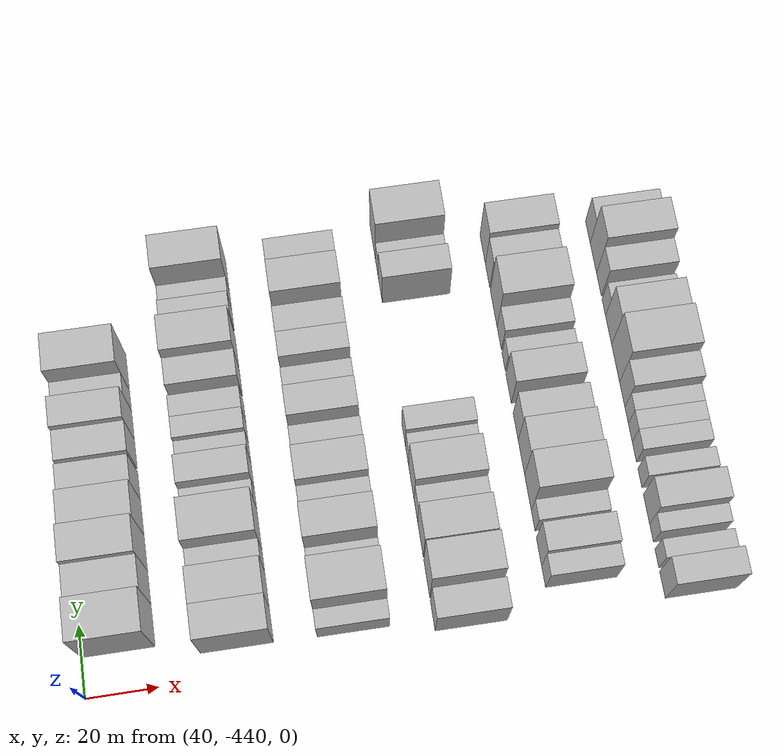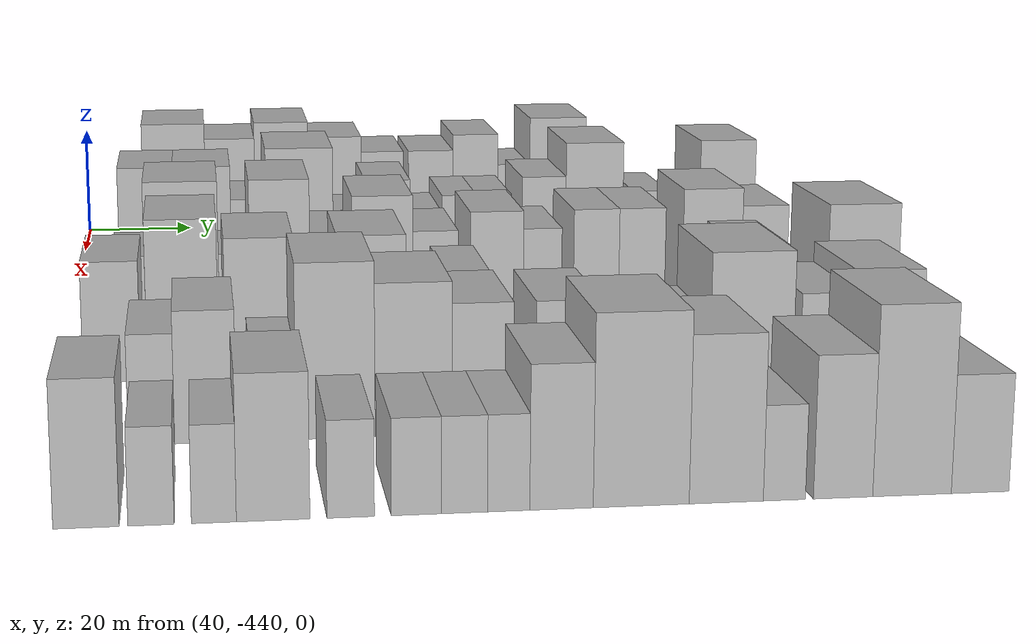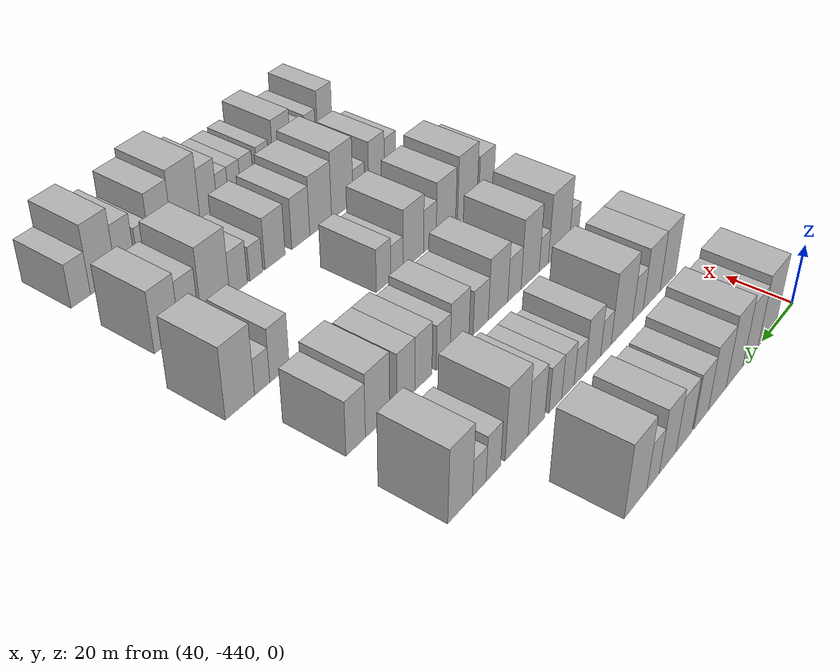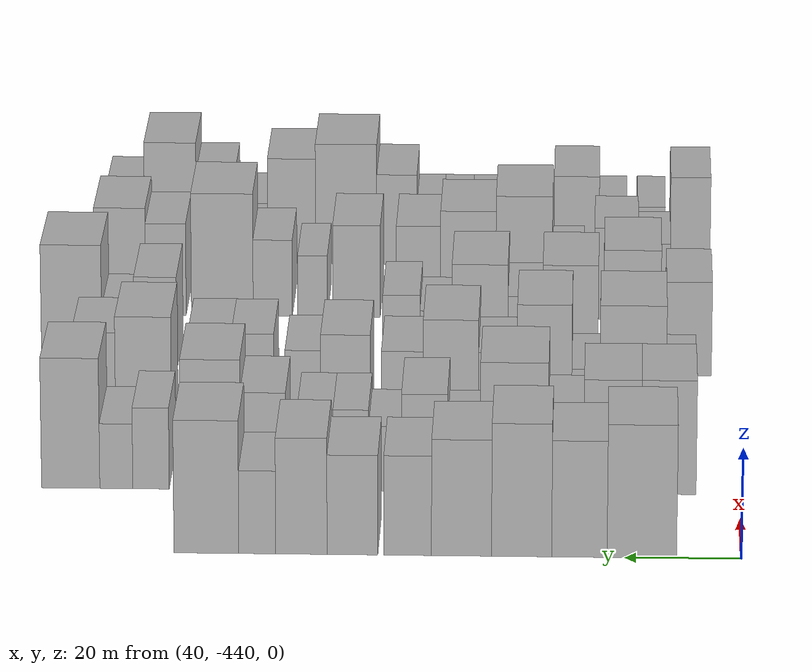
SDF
<sdf version="1.6">
 <world name="default">
  <model name="building_14">
   <static>1</static>
   <pose>50.0000 -422.9158 0 0.000000 0.000000 0.000000</pose>
   <link name="link">
    <pose>0 0 12.00 0 0 0</pose>
    <collision name="collision"><geometry><box><size>20.0000 11.8548 24.0000</size></box></geometry></collision>
    <visual name="visual">
     <cast_shadows>0</cast_shadows>
     <geometry><box><size>20.0000 11.8548 24.0000</size></box></geometry>
     <material>
      <script>
       <uri>model://HANNAS_wall/materials/scripts</uri>
       <uri>model://HANNAS_wall/materials/textures</uri>
       <name>vrc/HANNAS_wall</name>
      </script>
     </material>
    </visual>
   </link>
  </model>
  <model name="building_15">
   <static>1</static>
   <pose>50.0000 -412.2645 0 0.000000 0.000000 0.000000</pose>
   <link name="link">
    <pose>0 0 10.50 0 0 0</pose>
    <collision name="collision"><geometry><box><size>20.0000 9.4478 21.0000</size></box></geometry></collision>
    <visual name="visual">
     <cast_shadows>0</cast_shadows>
     <geometry><box><size>20.0000 9.4478 21.0000</size></box></geometry>
     <material>
      <script>
       <uri>model://HANNAS_wall/materials/scripts</uri>
       <uri>model://HANNAS_wall/materials/textures</uri>
       <name>vrc/HANNAS_wall</name>
      </script>
     </material>
    </visual>
   </link>
  </model>
  <model name="building_16">
   <static>1</static>
   <pose>50.0000 -402.4108 0 0.000000 0.000000 0.000000</pose>
   <link name="link">
    <pose>0 0 12.00 0 0 0</pose>
    <collision name="collision"><geometry><box><size>20.0000 10.2596 24.0000</size></box></geometry></collision>
    <visual name="visual">
     <cast_shadows>0</cast_shadows>
     <geometry><box><size>20.0000 10.2596 24.0000</size></box></geometry>
     <material>
      <script>
       <uri>model://HANNAS_wall/materials/scripts</uri>
       <uri>model://HANNAS_wall/materials/textures</uri>
       <name>vrc/HANNAS_wall</name>
      </script>
     </material>
    </visual>
   </link>
  </model>
  <model name="building_17">
   <static>1</static>
   <pose>50.0000 -392.1484 0 0.000000 0.000000 0.000000</pose>
   <link name="link">
    <pose>0 0 10.50 0 0 0</pose>
    <collision name="collision"><geometry><box><size>20.0000 10.2651 21.0000</size></box></geometry></collision>
    <visual name="visual">
     <cast_shadows>0</cast_shadows>
     <geometry><box><size>20.0000 10.2651 21.0000</size></box></geometry>
     <material>
      <script>
       <uri>model://HANNAS_wall/materials/scripts</uri>
       <uri>model://HANNAS_wall/materials/textures</uri>
       <name>vrc/HANNAS_wall</name>
      </script>
     </material>
    </visual>
   </link>
  </model>
  <model name="building_18">
   <static>1</static>
   <pose>50.0000 -382.9434 0 0.000000 0.000000 0.000000</pose>
   <link name="link">
    <pose>0 0 9.00 0 0 0</pose>
    <collision name="collision"><geometry><box><size>20.0000 8.1450 18.0000</size></box></geometry></collision>
    <visual name="visual">
     <cast_shadows>0</cast_shadows>
     <geometry><box><size>20.0000 8.1450 18.0000</size></box></geometry>
     <material>
      <script>
       <uri>model://HANNAS_wall/materials/scripts</uri>
       <uri>model://HANNAS_wall/materials/textures</uri>
       <name>vrc/HANNAS_wall</name>
      </script>
     </material>
    </visual>
   </link>
  </model>
  <model name="building_19">
   <static>1</static>
   <pose>50.0000 -373.5247 0 0.000000 0.000000 0.000000</pose>
   <link name="link">
    <pose>0 0 9.00 0 0 0</pose>
    <collision name="collision"><geometry><box><size>20.0000 8.6924 18.0000</size></box></geometry></collision>
    <visual name="visual">
     <cast_shadows>0</cast_shadows>
     <geometry><box><size>20.0000 8.6924 18.0000</size></box></geometry>
     <material>
      <script>
       <uri>model://HANNAS_wall/materials/scripts</uri>
       <uri>model://HANNAS_wall/materials/textures</uri>
       <name>vrc/HANNAS_wall</name>
      </script>
     </material>
    </visual>
   </link>
  </model>
  <model name="building_20">
   <static>1</static>
   <pose>50.0000 -364.7850 0 0.000000 0.000000 0.000000</pose>
   <link name="link">
    <pose>0 0 10.50 0 0 0</pose>
    <collision name="collision"><geometry><box><size>20.0000 8.7870 21.0000</size></box></geometry></collision>
    <visual name="visual">
     <cast_shadows>0</cast_shadows>
     <geometry><box><size>20.0000 8.7870 21.0000</size></box></geometry>
     <material>
      <script>
       <uri>model://HANNAS_wall/materials/scripts</uri>
       <uri>model://HANNAS_wall/materials/textures</uri>
       <name>vrc/HANNAS_wall</name>
      </script>
     </material>
    </visual>
   </link>
  </model>
  <model name="building_21">
   <static>1</static>
   <pose>50.0000 -357.2429 0 0.000000 0.000000 0.000000</pose>
   <link name="link">
    <pose>0 0 7.50 0 0 0</pose>
    <collision name="collision"><geometry><box><size>20.0000 6.2971 15.0000</size></box></geometry></collision>
    <visual name="visual">
     <cast_shadows>0</cast_shadows>
     <geometry><box><size>20.0000 6.2971 15.0000</size></box></geometry>
     <material>
      <script>
       <uri>model://HANNAS_wall/materials/scripts</uri>
       <uri>model://HANNAS_wall/materials/textures</uri>
       <name>vrc/HANNAS_wall</name>
      </script>
     </material>
    </visual>
   </link>
  </model>
  <model name="building_22">
   <static>1</static>
   <pose>50.0000 -348.5519 0 0.000000 0.000000 0.000000</pose>
   <link name="link">
    <pose>0 0 12.00 0 0 0</pose>
    <collision name="collision"><geometry><box><size>20.0000 11.0849 24.0000</size></box></geometry></collision>
    <visual name="visual">
     <cast_shadows>0</cast_shadows>
     <geometry><box><size>20.0000 11.0849 24.0000</size></box></geometry>
     <material>
      <script>
       <uri>model://HANNAS_wall/materials/scripts</uri>
       <uri>model://HANNAS_wall/materials/textures</uri>
       <name>vrc/HANNAS_wall</name>
      </script>
     </material>
    </visual>
   </link>
  </model>
  <model name="building_139">
   <static>1</static>
   <pose>82.0000 -427.6786 0 0.000000 0.000000 0.000000</pose>
   <link name="link">
    <pose>0 0 10.50 0 0 0</pose>
    <collision name="collision"><geometry><box><size>20.0000 9.5732 21.0000</size></box></geometry></collision>
    <visual name="visual">
     <cast_shadows>0</cast_shadows>
     <geometry><box><size>20.0000 9.5732 21.0000</size></box></geometry>
     <material>
      <script>
       <uri>model://HANNAS_wall/materials/scripts</uri>
       <uri>model://HANNAS_wall/materials/textures</uri>
       <name>vrc/HANNAS_wall</name>
      </script>
     </material>
    </visual>
   </link>
  </model>
  <model name="building_140">
   <static>1</static>
   <pose>82.0000 -417.8533 0 0.000000 0.000000 0.000000</pose>
   <link name="link">
    <pose>0 0 10.50 0 0 0</pose>
    <collision name="collision"><geometry><box><size>20.0000 10.0773 21.0000</size></box></geometry></collision>
    <visual name="visual">
     <cast_shadows>0</cast_shadows>
     <geometry><box><size>20.0000 10.0773 21.0000</size></box></geometry>
     <material>
      <script>
       <uri>model://HANNAS_wall/materials/scripts</uri>
       <uri>model://HANNAS_wall/materials/textures</uri>
       <name>vrc/HANNAS_wall</name>
      </script>
     </material>
    </visual>
   </link>
  </model>
  <model name="building_141">
   <static>1</static>
   <pose>82.0000 -409.7149 0 0.000000 0.000000 0.000000</pose>
   <link name="link">
    <pose>0 0 7.50 0 0 0</pose>
    <collision name="collision"><geometry><box><size>20.0000 6.1996 15.0000</size></box></geometry></collision>
    <visual name="visual">
     <cast_shadows>0</cast_shadows>
     <geometry><box><size>20.0000 6.1996 15.0000</size></box></geometry>
     <material>
      <script>
       <uri>model://HANNAS_wall/materials/scripts</uri>
       <uri>model://HANNAS_wall/materials/textures</uri>
       <name>vrc/HANNAS_wall</name>
      </script>
     </material>
    </visual>
   </link>
  </model>
  <model name="building_142">
   <static>1</static>
   <pose>82.0000 -400.6685 0 0.000000 0.000000 0.000000</pose>
   <link name="link">
    <pose>0 0 12.00 0 0 0</pose>
    <collision name="collision"><geometry><box><size>20.0000 11.8931 24.0000</size></box></geometry></collision>
    <visual name="visual">
     <cast_shadows>0</cast_shadows>
     <geometry><box><size>20.0000 11.8931 24.0000</size></box></geometry>
     <material>
      <script>
       <uri>model://HANNAS_wall/materials/scripts</uri>
       <uri>model://HANNAS_wall/materials/textures</uri>
       <name>vrc/HANNAS_wall</name>
      </script>
     </material>
    </visual>
   </link>
  </model>
  <model name="building_143">
   <static>1</static>
   <pose>82.0000 -391.8557 0 0.000000 0.000000 0.000000</pose>
   <link name="link">
    <pose>0 0 6.00 0 0 0</pose>
    <collision name="collision"><geometry><box><size>20.0000 5.7325 12.0000</size></box></geometry></collision>
    <visual name="visual">
     <cast_shadows>0</cast_shadows>
     <geometry><box><size>20.0000 5.7325 12.0000</size></box></geometry>
     <material>
      <script>
       <uri>model://HANNAS_wall/materials/scripts</uri>
       <uri>model://HANNAS_wall/materials/textures</uri>
       <name>vrc/HANNAS_wall</name>
      </script>
     </material>
    </visual>
   </link>
  </model>
  <model name="building_144">
   <static>1</static>
   <pose>82.0000 -384.9711 0 0.000000 0.000000 0.000000</pose>
   <link name="link">
    <pose>0 0 9.00 0 0 0</pose>
    <collision name="collision"><geometry><box><size>20.0000 8.0365 18.0000</size></box></geometry></collision>
    <visual name="visual">
     <cast_shadows>0</cast_shadows>
     <geometry><box><size>20.0000 8.0365 18.0000</size></box></geometry>
     <material>
      <script>
       <uri>model://HANNAS_wall/materials/scripts</uri>
       <uri>model://HANNAS_wall/materials/textures</uri>
       <name>vrc/HANNAS_wall</name>
      </script>
     </material>
    </visual>
   </link>
  </model>
  <model name="building_145">
   <static>1</static>
   <pose>82.0000 -378.0727 0 0.000000 0.000000 0.000000</pose>
   <link name="link">
    <pose>0 0 6.00 0 0 0</pose>
    <collision name="collision"><geometry><box><size>20.0000 5.7603 12.0000</size></box></geometry></collision>
    <visual name="visual">
     <cast_shadows>0</cast_shadows>
     <geometry><box><size>20.0000 5.7603 12.0000</size></box></geometry>
     <material>
      <script>
       <uri>model://HANNAS_wall/materials/scripts</uri>
       <uri>model://HANNAS_wall/materials/textures</uri>
       <name>vrc/HANNAS_wall</name>
      </script>
     </material>
    </visual>
   </link>
  </model>
  <model name="building_146">
   <static>1</static>
   <pose>82.0000 -372.0895 0 0.000000 0.000000 0.000000</pose>
   <link name="link">
    <pose>0 0 7.50 0 0 0</pose>
    <collision name="collision"><geometry><box><size>20.0000 6.2062 15.0000</size></box></geometry></collision>
    <visual name="visual">
     <cast_shadows>0</cast_shadows>
     <geometry><box><size>20.0000 6.2062 15.0000</size></box></geometry>
     <material>
      <script>
       <uri>model://HANNAS_wall/materials/scripts</uri>
       <uri>model://HANNAS_wall/materials/textures</uri>
       <name>vrc/HANNAS_wall</name>
      </script>
     </material>
    </visual>
   </link>
  </model>
  <model name="building_147">
   <static>1</static>
   <pose>82.0000 -365.8481 0 0.000000 0.000000 0.000000</pose>
   <link name="link">
    <pose>0 0 7.50 0 0 0</pose>
    <collision name="collision"><geometry><box><size>20.0000 6.2765 15.0000</size></box></geometry></collision>
    <visual name="visual">
     <cast_shadows>0</cast_shadows>
     <geometry><box><size>20.0000 6.2765 15.0000</size></box></geometry>
     <material>
      <script>
       <uri>model://HANNAS_wall/materials/scripts</uri>
       <uri>model://HANNAS_wall/materials/textures</uri>
       <name>vrc/HANNAS_wall</name>
      </script>
     </material>
    </visual>
   </link>
  </model>
  <model name="building_148">
   <static>1</static>
   <pose>82.0000 -356.7305 0 0.000000 0.000000 0.000000</pose>
   <link name="link">
    <pose>0 0 9.00 0 0 0</pose>
    <collision name="collision"><geometry><box><size>20.0000 7.9587 18.0000</size></box></geometry></collision>
    <visual name="visual">
     <cast_shadows>0</cast_shadows>
     <geometry><box><size>20.0000 7.9587 18.0000</size></box></geometry>
     <material>
      <script>
       <uri>model://HANNAS_wall/materials/scripts</uri>
       <uri>model://HANNAS_wall/materials/textures</uri>
       <name>vrc/HANNAS_wall</name>
      </script>
     </material>
    </visual>
   </link>
  </model>
  <model name="building_149">
   <static>1</static>
   <pose>82.0000 -347.5216 0 0.000000 0.000000 0.000000</pose>
   <link name="link">
    <pose>0 0 12.00 0 0 0</pose>
    <collision name="collision"><geometry><box><size>20.0000 10.4590 24.0000</size></box></geometry></collision>
    <visual name="visual">
     <cast_shadows>0</cast_shadows>
     <geometry><box><size>20.0000 10.4590 24.0000</size></box></geometry>
     <material>
      <script>
       <uri>model://HANNAS_wall/materials/scripts</uri>
       <uri>model://HANNAS_wall/materials/textures</uri>
       <name>vrc/HANNAS_wall</name>
      </script>
     </material>
    </visual>
   </link>
  </model>
  <model name="building_150">
   <static>1</static>
   <pose>82.0000 -337.1006 0 0.000000 0.000000 0.000000</pose>
   <link name="link">
    <pose>0 0 7.50 0 0 0</pose>
    <collision name="collision"><geometry><box><size>20.0000 6.3832 15.0000</size></box></geometry></collision>
    <visual name="visual">
     <cast_shadows>0</cast_shadows>
     <geometry><box><size>20.0000 6.3832 15.0000</size></box></geometry>
     <material>
      <script>
       <uri>model://HANNAS_wall/materials/scripts</uri>
       <uri>model://HANNAS_wall/materials/textures</uri>
       <name>vrc/HANNAS_wall</name>
      </script>
     </material>
    </visual>
   </link>
  </model>
  <model name="building_151">
   <static>1</static>
   <pose>82.0000 -331.0130 0 0.000000 0.000000 0.000000</pose>
   <link name="link">
    <pose>0 0 6.00 0 0 0</pose>
    <collision name="collision"><geometry><box><size>20.0000 5.7919 12.0000</size></box></geometry></collision>
    <visual name="visual">
     <cast_shadows>0</cast_shadows>
     <geometry><box><size>20.0000 5.7919 12.0000</size></box></geometry>
     <material>
      <script>
       <uri>model://HANNAS_wall/materials/scripts</uri>
       <uri>model://HANNAS_wall/materials/textures</uri>
       <name>vrc/HANNAS_wall</name>
      </script>
     </material>
    </visual>
   </link>
  </model>
  <model name="building_152">
   <static>1</static>
   <pose>82.0000 -323.0142 0 0.000000 0.000000 0.000000</pose>
   <link name="link">
    <pose>0 0 12.00 0 0 0</pose>
    <collision name="collision"><geometry><box><size>20.0000 10.2057 24.0000</size></box></geometry></collision>
    <visual name="visual">
     <cast_shadows>0</cast_shadows>
     <geometry><box><size>20.0000 10.2057 24.0000</size></box></geometry>
     <material>
      <script>
       <uri>model://HANNAS_wall/materials/scripts</uri>
       <uri>model://HANNAS_wall/materials/textures</uri>
       <name>vrc/HANNAS_wall</name>
      </script>
     </material>
    </visual>
   </link>
  </model>
  <model name="building_264">
   <static>1</static>
   <pose>114.0000 -430.0590 0 0.000000 0.000000 0.000000</pose>
   <link name="link">
    <pose>0 0 6.00 0 0 0</pose>
    <collision name="collision"><geometry><box><size>20.0000 5.3892 12.0000</size></box></geometry></collision>
    <visual name="visual">
     <cast_shadows>0</cast_shadows>
     <geometry><box><size>20.0000 5.3892 12.0000</size></box></geometry>
     <material>
      <script>
       <uri>model://HANNAS_wall/materials/scripts</uri>
       <uri>model://HANNAS_wall/materials/textures</uri>
       <name>vrc/HANNAS_wall</name>
      </script>
     </material>
    </visual>
   </link>
  </model>
  <model name="building_265">
   <static>1</static>
   <pose>114.0000 -421.4353 0 0.000000 0.000000 0.000000</pose>
   <link name="link">
    <pose>0 0 12.00 0 0 0</pose>
    <collision name="collision"><geometry><box><size>20.0000 11.8583 24.0000</size></box></geometry></collision>
    <visual name="visual">
     <cast_shadows>0</cast_shadows>
     <geometry><box><size>20.0000 11.8583 24.0000</size></box></geometry>
     <material>
      <script>
       <uri>model://HANNAS_wall/materials/scripts</uri>
       <uri>model://HANNAS_wall/materials/textures</uri>
       <name>vrc/HANNAS_wall</name>
      </script>
     </material>
    </visual>
   </link>
  </model>
  <model name="building_266">
   <static>1</static>
   <pose>114.0000 -412.9885 0 0.000000 0.000000 0.000000</pose>
   <link name="link">
    <pose>0 0 6.00 0 0 0</pose>
    <collision name="collision"><geometry><box><size>20.0000 5.0353 12.0000</size></box></geometry></collision>
    <visual name="visual">
     <cast_shadows>0</cast_shadows>
     <geometry><box><size>20.0000 5.0353 12.0000</size></box></geometry>
     <material>
      <script>
       <uri>model://HANNAS_wall/materials/scripts</uri>
       <uri>model://HANNAS_wall/materials/textures</uri>
       <name>vrc/HANNAS_wall</name>
      </script>
     </material>
    </visual>
   </link>
  </model>
  <model name="building_267">
   <static>1</static>
   <pose>114.0000 -405.5920 0 0.000000 0.000000 0.000000</pose>
   <link name="link">
    <pose>0 0 12.00 0 0 0</pose>
    <collision name="collision"><geometry><box><size>20.0000 9.7577 24.0000</size></box></geometry></collision>
    <visual name="visual">
     <cast_shadows>0</cast_shadows>
     <geometry><box><size>20.0000 9.7577 24.0000</size></box></geometry>
     <material>
      <script>
       <uri>model://HANNAS_wall/materials/scripts</uri>
       <uri>model://HANNAS_wall/materials/textures</uri>
       <name>vrc/HANNAS_wall</name>
      </script>
     </material>
    </visual>
   </link>
  </model>
  <model name="building_268">
   <static>1</static>
   <pose>114.0000 -397.2604 0 0.000000 0.000000 0.000000</pose>
   <link name="link">
    <pose>0 0 7.50 0 0 0</pose>
    <collision name="collision"><geometry><box><size>20.0000 6.9055 15.0000</size></box></geometry></collision>
    <visual name="visual">
     <cast_shadows>0</cast_shadows>
     <geometry><box><size>20.0000 6.9055 15.0000</size></box></geometry>
     <material>
      <script>
       <uri>model://HANNAS_wall/materials/scripts</uri>
       <uri>model://HANNAS_wall/materials/textures</uri>
       <name>vrc/HANNAS_wall</name>
      </script>
     </material>
    </visual>
   </link>
  </model>
  <model name="building_269">
   <static>1</static>
   <pose>114.0000 -388.8640 0 0.000000 0.000000 0.000000</pose>
   <link name="link">
    <pose>0 0 10.50 0 0 0</pose>
    <collision name="collision"><geometry><box><size>20.0000 9.8874 21.0000</size></box></geometry></collision>
    <visual name="visual">
     <cast_shadows>0</cast_shadows>
     <geometry><box><size>20.0000 9.8874 21.0000</size></box></geometry>
     <material>
      <script>
       <uri>model://HANNAS_wall/materials/scripts</uri>
       <uri>model://HANNAS_wall/materials/textures</uri>
       <name>vrc/HANNAS_wall</name>
      </script>
     </material>
    </visual>
   </link>
  </model>
  <model name="building_270">
   <static>1</static>
   <pose>114.0000 -380.1747 0 0.000000 0.000000 0.000000</pose>
   <link name="link">
    <pose>0 0 7.50 0 0 0</pose>
    <collision name="collision"><geometry><box><size>20.0000 7.4911 15.0000</size></box></geometry></collision>
    <visual name="visual">
     <cast_shadows>0</cast_shadows>
     <geometry><box><size>20.0000 7.4911 15.0000</size></box></geometry>
     <material>
      <script>
       <uri>model://HANNAS_wall/materials/scripts</uri>
       <uri>model://HANNAS_wall/materials/textures</uri>
       <name>vrc/HANNAS_wall</name>
      </script>
     </material>
    </visual>
   </link>
  </model>
  <model name="building_271">
   <static>1</static>
   <pose>114.0000 -370.0031 0 0.000000 0.000000 0.000000</pose>
   <link name="link">
    <pose>0 0 9.00 0 0 0</pose>
    <collision name="collision"><geometry><box><size>20.0000 8.8523 18.0000</size></box></geometry></collision>
    <visual name="visual">
     <cast_shadows>0</cast_shadows>
     <geometry><box><size>20.0000 8.8523 18.0000</size></box></geometry>
     <material>
      <script>
       <uri>model://HANNAS_wall/materials/scripts</uri>
       <uri>model://HANNAS_wall/materials/textures</uri>
       <name>vrc/HANNAS_wall</name>
      </script>
     </material>
    </visual>
   </link>
  </model>
  <model name="building_272">
   <static>1</static>
   <pose>114.0000 -362.3859 0 0.000000 0.000000 0.000000</pose>
   <link name="link">
    <pose>0 0 7.50 0 0 0</pose>
    <collision name="collision"><geometry><box><size>20.0000 6.3821 15.0000</size></box></geometry></collision>
    <visual name="visual">
     <cast_shadows>0</cast_shadows>
     <geometry><box><size>20.0000 6.3821 15.0000</size></box></geometry>
     <material>
      <script>
       <uri>model://HANNAS_wall/materials/scripts</uri>
       <uri>model://HANNAS_wall/materials/textures</uri>
       <name>vrc/HANNAS_wall</name>
      </script>
     </material>
    </visual>
   </link>
  </model>
  <model name="building_273">
   <static>1</static>
   <pose>114.0000 -353.3860 0 0.000000 0.000000 0.000000</pose>
   <link name="link">
    <pose>0 0 9.00 0 0 0</pose>
    <collision name="collision"><geometry><box><size>20.0000 7.6176 18.0000</size></box></geometry></collision>
    <visual name="visual">
     <cast_shadows>0</cast_shadows>
     <geometry><box><size>20.0000 7.6176 18.0000</size></box></geometry>
     <material>
      <script>
       <uri>model://HANNAS_wall/materials/scripts</uri>
       <uri>model://HANNAS_wall/materials/textures</uri>
       <name>vrc/HANNAS_wall</name>
      </script>
     </material>
    </visual>
   </link>
  </model>
  <model name="building_274">
   <static>1</static>
   <pose>114.0000 -345.6929 0 0.000000 0.000000 0.000000</pose>
   <link name="link">
    <pose>0 0 9.00 0 0 0</pose>
    <collision name="collision"><geometry><box><size>20.0000 7.7685 18.0000</size></box></geometry></collision>
    <visual name="visual">
     <cast_shadows>0</cast_shadows>
     <geometry><box><size>20.0000 7.7685 18.0000</size></box></geometry>
     <material>
      <script>
       <uri>model://HANNAS_wall/materials/scripts</uri>
       <uri>model://HANNAS_wall/materials/textures</uri>
       <name>vrc/HANNAS_wall</name>
      </script>
     </material>
    </visual>
   </link>
  </model>
  <model name="building_275">
   <static>1</static>
   <pose>114.0000 -333.7902 0 0.000000 0.000000 0.000000</pose>
   <link name="link">
    <pose>0 0 10.50 0 0 0</pose>
    <collision name="collision"><geometry><box><size>20.0000 10.0369 21.0000</size></box></geometry></collision>
    <visual name="visual">
     <cast_shadows>0</cast_shadows>
     <geometry><box><size>20.0000 10.0369 21.0000</size></box></geometry>
     <material>
      <script>
       <uri>model://HANNAS_wall/materials/scripts</uri>
       <uri>model://HANNAS_wall/materials/textures</uri>
       <name>vrc/HANNAS_wall</name>
      </script>
     </material>
    </visual>
   </link>
  </model>
  <model name="building_276">
   <static>1</static>
   <pose>114.0000 -324.8728 0 0.000000 0.000000 0.000000</pose>
   <link name="link">
    <pose>0 0 9.00 0 0 0</pose>
    <collision name="collision"><geometry><box><size>20.0000 7.7980 18.0000</size></box></geometry></collision>
    <visual name="visual">
     <cast_shadows>0</cast_shadows>
     <geometry><box><size>20.0000 7.7980 18.0000</size></box></geometry>
     <material>
      <script>
       <uri>model://HANNAS_wall/materials/scripts</uri>
       <uri>model://HANNAS_wall/materials/textures</uri>
       <name>vrc/HANNAS_wall</name>
      </script>
     </material>
    </visual>
   </link>
  </model>
  <model name="building_386">
   <static>1</static>
   <pose>146.0000 -431.6997 0 0.000000 0.000000 0.000000</pose>
   <link name="link">
    <pose>0 0 9.00 0 0 0</pose>
    <collision name="collision"><geometry><box><size>20.0000 8.3345 18.0000</size></box></geometry></collision>
    <visual name="visual">
     <cast_shadows>0</cast_shadows>
     <geometry><box><size>20.0000 8.3345 18.0000</size></box></geometry>
     <material>
      <script>
       <uri>model://HANNAS_wall/materials/scripts</uri>
       <uri>model://HANNAS_wall/materials/textures</uri>
       <name>vrc/HANNAS_wall</name>
      </script>
     </material>
    </visual>
   </link>
  </model>
  <model name="building_387">
   <static>1</static>
   <pose>146.0000 -421.3138 0 0.000000 0.000000 0.000000</pose>
   <link name="link">
    <pose>0 0 12.00 0 0 0</pose>
    <collision name="collision"><geometry><box><size>20.0000 10.4374 24.0000</size></box></geometry></collision>
    <visual name="visual">
     <cast_shadows>0</cast_shadows>
     <geometry><box><size>20.0000 10.4374 24.0000</size></box></geometry>
     <material>
      <script>
       <uri>model://HANNAS_wall/materials/scripts</uri>
       <uri>model://HANNAS_wall/materials/textures</uri>
       <name>vrc/HANNAS_wall</name>
      </script>
     </material>
    </visual>
   </link>
  </model>
  <model name="building_388">
   <static>1</static>
   <pose>146.0000 -410.0131 0 0.000000 0.000000 0.000000</pose>
   <link name="link">
    <pose>0 0 10.50 0 0 0</pose>
    <collision name="collision"><geometry><box><size>20.0000 10.1641 21.0000</size></box></geometry></collision>
    <visual name="visual">
     <cast_shadows>0</cast_shadows>
     <geometry><box><size>20.0000 10.1641 21.0000</size></box></geometry>
     <material>
      <script>
       <uri>model://HANNAS_wall/materials/scripts</uri>
       <uri>model://HANNAS_wall/materials/textures</uri>
       <name>vrc/HANNAS_wall</name>
      </script>
     </material>
    </visual>
   </link>
  </model>
  <model name="building_389">
   <static>1</static>
   <pose>146.0000 -401.7469 0 0.000000 0.000000 0.000000</pose>
   <link name="link">
    <pose>0 0 7.50 0 0 0</pose>
    <collision name="collision"><geometry><box><size>20.0000 6.3684 15.0000</size></box></geometry></collision>
    <visual name="visual">
     <cast_shadows>0</cast_shadows>
     <geometry><box><size>20.0000 6.3684 15.0000</size></box></geometry>
     <material>
      <script>
       <uri>model://HANNAS_wall/materials/scripts</uri>
       <uri>model://HANNAS_wall/materials/textures</uri>
       <name>vrc/HANNAS_wall</name>
      </script>
     </material>
    </visual>
   </link>
  </model>
  <model name="building_390">
   <static>1</static>
   <pose>146.0000 -393.4507 0 0.000000 0.000000 0.000000</pose>
   <link name="link">
    <pose>0 0 10.50 0 0 0</pose>
    <collision name="collision"><geometry><box><size>20.0000 10.2239 21.0000</size></box></geometry></collision>
    <visual name="visual">
     <cast_shadows>0</cast_shadows>
     <geometry><box><size>20.0000 10.2239 21.0000</size></box></geometry>
     <material>
      <script>
       <uri>model://HANNAS_wall/materials/scripts</uri>
       <uri>model://HANNAS_wall/materials/textures</uri>
       <name>vrc/HANNAS_wall</name>
      </script>
     </material>
    </visual>
   </link>
  </model>
  <model name="building_391">
   <static>1</static>
   <pose>146.0000 -385.4068 0 0.000000 0.000000 0.000000</pose>
   <link name="link">
    <pose>0 0 6.00 0 0 0</pose>
    <collision name="collision"><geometry><box><size>20.0000 5.8638 12.0000</size></box></geometry></collision>
    <visual name="visual">
     <cast_shadows>0</cast_shadows>
     <geometry><box><size>20.0000 5.8638 12.0000</size></box></geometry>
     <material>
      <script>
       <uri>model://HANNAS_wall/materials/scripts</uri>
       <uri>model://HANNAS_wall/materials/textures</uri>
       <name>vrc/HANNAS_wall</name>
      </script>
     </material>
    </visual>
   </link>
  </model>
  <model name="building_392">
   <static>1</static>
   <pose>146.0000 -379.0821 0 0.000000 0.000000 0.000000</pose>
   <link name="link">
    <pose>0 0 7.50 0 0 0</pose>
    <collision name="collision"><geometry><box><size>20.0000 6.7856 15.0000</size></box></geometry></collision>
    <visual name="visual">
     <cast_shadows>0</cast_shadows>
     <geometry><box><size>20.0000 6.7856 15.0000</size></box></geometry>
     <material>
      <script>
       <uri>model://HANNAS_wall/materials/scripts</uri>
       <uri>model://HANNAS_wall/materials/textures</uri>
       <name>vrc/HANNAS_wall</name>
      </script>
     </material>
    </visual>
   </link>
  </model>
  <model name="building_393">
   <static>1</static>
   <pose>146.0000 -333.9875 0 0.000000 0.000000 0.000000</pose>
   <link name="link">
    <pose>0 0 9.00 0 0 0</pose>
    <collision name="collision"><geometry><box><size>20.0000 7.8011 18.0000</size></box></geometry></collision>
    <visual name="visual">
     <cast_shadows>0</cast_shadows>
     <geometry><box><size>20.0000 7.8011 18.0000</size></box></geometry>
     <material>
      <script>
       <uri>model://HANNAS_wall/materials/scripts</uri>
       <uri>model://HANNAS_wall/materials/textures</uri>
       <name>vrc/HANNAS_wall</name>
      </script>
     </material>
    </visual>
   </link>
  </model>
  <model name="building_394">
   <static>1</static>
   <pose>146.0000 -327.1172 0 0.000000 0.000000 0.000000</pose>
   <link name="link">
    <pose>0 0 6.00 0 0 0</pose>
    <collision name="collision"><geometry><box><size>20.0000 5.9395 12.0000</size></box></geometry></collision>
    <visual name="visual">
     <cast_shadows>0</cast_shadows>
     <geometry><box><size>20.0000 5.9395 12.0000</size></box></geometry>
     <material>
      <script>
       <uri>model://HANNAS_wall/materials/scripts</uri>
       <uri>model://HANNAS_wall/materials/textures</uri>
       <name>vrc/HANNAS_wall</name>
      </script>
     </material>
    </visual>
   </link>
  </model>
  <model name="building_395">
   <static>1</static>
   <pose>146.0000 -318.5993 0 0.000000 0.000000 0.000000</pose>
   <link name="link">
    <pose>0 0 12.00 0 0 0</pose>
    <collision name="collision"><geometry><box><size>20.0000 11.0964 24.0000</size></box></geometry></collision>
    <visual name="visual">
     <cast_shadows>0</cast_shadows>
     <geometry><box><size>20.0000 11.0964 24.0000</size></box></geometry>
     <material>
      <script>
       <uri>model://HANNAS_wall/materials/scripts</uri>
       <uri>model://HANNAS_wall/materials/textures</uri>
       <name>vrc/HANNAS_wall</name>
      </script>
     </material>
    </visual>
   </link>
  </model>
  <model name="building_504">
   <static>1</static>
   <pose>178.0000 -425.4535 0 0.000000 0.000000 0.000000</pose>
   <link name="link">
    <pose>0 0 7.50 0 0 0</pose>
    <collision name="collision"><geometry><box><size>20.0000 6.0584 15.0000</size></box></geometry></collision>
    <visual name="visual">
     <cast_shadows>0</cast_shadows>
     <geometry><box><size>20.0000 6.0584 15.0000</size></box></geometry>
     <material>
      <script>
       <uri>model://HANNAS_wall/materials/scripts</uri>
       <uri>model://HANNAS_wall/materials/textures</uri>
       <name>vrc/HANNAS_wall</name>
      </script>
     </material>
    </visual>
   </link>
  </model>
  <model name="building_505">
   <static>1</static>
   <pose>178.0000 -418.3644 0 0.000000 0.000000 0.000000</pose>
   <link name="link">
    <pose>0 0 9.00 0 0 0</pose>
    <collision name="collision"><geometry><box><size>20.0000 8.1198 18.0000</size></box></geometry></collision>
    <visual name="visual">
     <cast_shadows>0</cast_shadows>
     <geometry><box><size>20.0000 8.1198 18.0000</size></box></geometry>
     <material>
      <script>
       <uri>model://HANNAS_wall/materials/scripts</uri>
       <uri>model://HANNAS_wall/materials/textures</uri>
       <name>vrc/HANNAS_wall</name>
      </script>
     </material>
    </visual>
   </link>
  </model>
  <model name="building_506">
   <static>1</static>
   <pose>178.0000 -409.3611 0 0.000000 0.000000 0.000000</pose>
   <link name="link">
    <pose>0 0 6.00 0 0 0</pose>
    <collision name="collision"><geometry><box><size>20.0000 5.8869 12.0000</size></box></geometry></collision>
    <visual name="visual">
     <cast_shadows>0</cast_shadows>
     <geometry><box><size>20.0000 5.8869 12.0000</size></box></geometry>
     <material>
      <script>
       <uri>model://HANNAS_wall/materials/scripts</uri>
       <uri>model://HANNAS_wall/materials/textures</uri>
       <name>vrc/HANNAS_wall</name>
      </script>
     </material>
    </visual>
   </link>
  </model>
  <model name="building_507">
   <static>1</static>
   <pose>178.0000 -401.1393 0 0.000000 0.000000 0.000000</pose>
   <link name="link">
    <pose>0 0 12.00 0 0 0</pose>
    <collision name="collision"><geometry><box><size>20.0000 10.5566 24.0000</size></box></geometry></collision>
    <visual name="visual">
     <cast_shadows>0</cast_shadows>
     <geometry><box><size>20.0000 10.5566 24.0000</size></box></geometry>
     <material>
      <script>
       <uri>model://HANNAS_wall/materials/scripts</uri>
       <uri>model://HANNAS_wall/materials/textures</uri>
       <name>vrc/HANNAS_wall</name>
      </script>
     </material>
    </visual>
   </link>
  </model>
  <model name="building_508">
   <static>1</static>
   <pose>178.0000 -390.6744 0 0.000000 0.000000 0.000000</pose>
   <link name="link">
    <pose>0 0 10.50 0 0 0</pose>
    <collision name="collision"><geometry><box><size>20.0000 10.3732 21.0000</size></box></geometry></collision>
    <visual name="visual">
     <cast_shadows>0</cast_shadows>
     <geometry><box><size>20.0000 10.3732 21.0000</size></box></geometry>
     <material>
      <script>
       <uri>model://HANNAS_wall/materials/scripts</uri>
       <uri>model://HANNAS_wall/materials/textures</uri>
       <name>vrc/HANNAS_wall</name>
      </script>
     </material>
    </visual>
   </link>
  </model>
  <model name="building_509">
   <static>1</static>
   <pose>178.0000 -381.3459 0 0.000000 0.000000 0.000000</pose>
   <link name="link">
    <pose>0 0 9.00 0 0 0</pose>
    <collision name="collision"><geometry><box><size>20.0000 8.2838 18.0000</size></box></geometry></collision>
    <visual name="visual">
     <cast_shadows>0</cast_shadows>
     <geometry><box><size>20.0000 8.2838 18.0000</size></box></geometry>
     <material>
      <script>
       <uri>model://HANNAS_wall/materials/scripts</uri>
       <uri>model://HANNAS_wall/materials/textures</uri>
       <name>vrc/HANNAS_wall</name>
      </script>
     </material>
    </visual>
   </link>
  </model>
  <model name="building_510">
   <static>1</static>
   <pose>178.0000 -369.7418 0 0.000000 0.000000 0.000000</pose>
   <link name="link">
    <pose>0 0 9.00 0 0 0</pose>
    <collision name="collision"><geometry><box><size>20.0000 8.9245 18.0000</size></box></geometry></collision>
    <visual name="visual">
     <cast_shadows>0</cast_shadows>
     <geometry><box><size>20.0000 8.9245 18.0000</size></box></geometry>
     <material>
      <script>
       <uri>model://HANNAS_wall/materials/scripts</uri>
       <uri>model://HANNAS_wall/materials/textures</uri>
       <name>vrc/HANNAS_wall</name>
      </script>
     </material>
    </visual>
   </link>
  </model>
  <model name="building_511">
   <static>1</static>
   <pose>178.0000 -361.4951 0 0.000000 0.000000 0.000000</pose>
   <link name="link">
    <pose>0 0 6.00 0 0 0</pose>
    <collision name="collision"><geometry><box><size>20.0000 5.5688 12.0000</size></box></geometry></collision>
    <visual name="visual">
     <cast_shadows>0</cast_shadows>
     <geometry><box><size>20.0000 5.5688 12.0000</size></box></geometry>
     <material>
      <script>
       <uri>model://HANNAS_wall/materials/scripts</uri>
       <uri>model://HANNAS_wall/materials/textures</uri>
       <name>vrc/HANNAS_wall</name>
      </script>
     </material>
    </visual>
   </link>
  </model>
  <model name="building_512">
   <static>1</static>
   <pose>178.0000 -354.0313 0 0.000000 0.000000 0.000000</pose>
   <link name="link">
    <pose>0 0 7.50 0 0 0</pose>
    <collision name="collision"><geometry><box><size>20.0000 7.3588 15.0000</size></box></geometry></collision>
    <visual name="visual">
     <cast_shadows>0</cast_shadows>
     <geometry><box><size>20.0000 7.3588 15.0000</size></box></geometry>
     <material>
      <script>
       <uri>model://HANNAS_wall/materials/scripts</uri>
       <uri>model://HANNAS_wall/materials/textures</uri>
       <name>vrc/HANNAS_wall</name>
      </script>
     </material>
    </visual>
   </link>
  </model>
  <model name="building_513">
   <static>1</static>
   <pose>178.0000 -344.5603 0 0.000000 0.000000 0.000000</pose>
   <link name="link">
    <pose>0 0 12.00 0 0 0</pose>
    <collision name="collision"><geometry><box><size>20.0000 11.5831 24.0000</size></box></geometry></collision>
    <visual name="visual">
     <cast_shadows>0</cast_shadows>
     <geometry><box><size>20.0000 11.5831 24.0000</size></box></geometry>
     <material>
      <script>
       <uri>model://HANNAS_wall/materials/scripts</uri>
       <uri>model://HANNAS_wall/materials/textures</uri>
       <name>vrc/HANNAS_wall</name>
      </script>
     </material>
    </visual>
   </link>
  </model>
  <model name="building_514">
   <static>1</static>
   <pose>178.0000 -333.9810 0 0.000000 0.000000 0.000000</pose>
   <link name="link">
    <pose>0 0 9.00 0 0 0</pose>
    <collision name="collision"><geometry><box><size>20.0000 7.5756 18.0000</size></box></geometry></collision>
    <visual name="visual">
     <cast_shadows>0</cast_shadows>
     <geometry><box><size>20.0000 7.5756 18.0000</size></box></geometry>
     <material>
      <script>
       <uri>model://HANNAS_wall/materials/scripts</uri>
       <uri>model://HANNAS_wall/materials/textures</uri>
       <name>vrc/HANNAS_wall</name>
      </script>
     </material>
    </visual>
   </link>
  </model>
  <model name="building_515">
   <static>1</static>
   <pose>178.0000 -325.3810 0 0.000000 0.000000 0.000000</pose>
   <link name="link">
    <pose>0 0 10.50 0 0 0</pose>
    <collision name="collision"><geometry><box><size>20.0000 9.6243 21.0000</size></box></geometry></collision>
    <visual name="visual">
     <cast_shadows>0</cast_shadows>
     <geometry><box><size>20.0000 9.6243 21.0000</size></box></geometry>
     <material>
      <script>
       <uri>model://HANNAS_wall/materials/scripts</uri>
       <uri>model://HANNAS_wall/materials/textures</uri>
       <name>vrc/HANNAS_wall</name>
      </script>
     </material>
    </visual>
   </link>
  </model>
  <model name="building_621">
   <static>1</static>
   <pose>210.0000 -432.5118 0 0.000000 0.000000 0.000000</pose>
   <link name="link">
    <pose>0 0 9.00 0 0 0</pose>
    <collision name="collision"><geometry><box><size>20.0000 7.6347 18.0000</size></box></geometry></collision>
    <visual name="visual">
     <cast_shadows>0</cast_shadows>
     <geometry><box><size>20.0000 7.6347 18.0000</size></box></geometry>
     <material>
      <script>
       <uri>model://HANNAS_wall/materials/scripts</uri>
       <uri>model://HANNAS_wall/materials/textures</uri>
       <name>vrc/HANNAS_wall</name>
      </script>
     </material>
    </visual>
   </link>
  </model>
  <model name="building_622">
   <static>1</static>
   <pose>210.0000 -425.0102 0 0.000000 0.000000 0.000000</pose>
   <link name="link">
    <pose>0 0 6.00 0 0 0</pose>
    <collision name="collision"><geometry><box><size>20.0000 5.3683 12.0000</size></box></geometry></collision>
    <visual name="visual">
     <cast_shadows>0</cast_shadows>
     <geometry><box><size>20.0000 5.3683 12.0000</size></box></geometry>
     <material>
      <script>
       <uri>model://HANNAS_wall/materials/scripts</uri>
       <uri>model://HANNAS_wall/materials/textures</uri>
       <name>vrc/HANNAS_wall</name>
      </script>
     </material>
    </visual>
   </link>
  </model>
  <model name="building_623">
   <static>1</static>
   <pose>210.0000 -417.7038 0 0.000000 0.000000 0.000000</pose>
   <link name="link">
    <pose>0 0 6.00 0 0 0</pose>
    <collision name="collision"><geometry><box><size>20.0000 5.2446 12.0000</size></box></geometry></collision>
    <visual name="visual">
     <cast_shadows>0</cast_shadows>
     <geometry><box><size>20.0000 5.2446 12.0000</size></box></geometry>
     <material>
      <script>
       <uri>model://HANNAS_wall/materials/scripts</uri>
       <uri>model://HANNAS_wall/materials/textures</uri>
       <name>vrc/HANNAS_wall</name>
      </script>
     </material>
    </visual>
   </link>
  </model>
  <model name="building_624">
   <static>1</static>
   <pose>210.0000 -410.7633 0 0.000000 0.000000 0.000000</pose>
   <link name="link">
    <pose>0 0 9.00 0 0 0</pose>
    <collision name="collision"><geometry><box><size>20.0000 8.6363 18.0000</size></box></geometry></collision>
    <visual name="visual">
     <cast_shadows>0</cast_shadows>
     <geometry><box><size>20.0000 8.6363 18.0000</size></box></geometry>
     <material>
      <script>
       <uri>model://HANNAS_wall/materials/scripts</uri>
       <uri>model://HANNAS_wall/materials/textures</uri>
       <name>vrc/HANNAS_wall</name>
      </script>
     </material>
    </visual>
   </link>
  </model>
  <model name="building_625">
   <static>1</static>
   <pose>210.0000 -401.6311 0 0.000000 0.000000 0.000000</pose>
   <link name="link">
    <pose>0 0 6.00 0 0 0</pose>
    <collision name="collision"><geometry><box><size>20.0000 5.6280 12.0000</size></box></geometry></collision>
    <visual name="visual">
     <cast_shadows>0</cast_shadows>
     <geometry><box><size>20.0000 5.6280 12.0000</size></box></geometry>
     <material>
      <script>
       <uri>model://HANNAS_wall/materials/scripts</uri>
       <uri>model://HANNAS_wall/materials/textures</uri>
       <name>vrc/HANNAS_wall</name>
      </script>
     </material>
    </visual>
   </link>
  </model>
  <model name="building_626">
   <static>1</static>
   <pose>210.0000 -393.8272 0 0.000000 0.000000 0.000000</pose>
   <link name="link">
    <pose>0 0 6.00 0 0 0</pose>
    <collision name="collision"><geometry><box><size>20.0000 5.9799 12.0000</size></box></geometry></collision>
    <visual name="visual">
     <cast_shadows>0</cast_shadows>
     <geometry><box><size>20.0000 5.9799 12.0000</size></box></geometry>
     <material>
      <script>
       <uri>model://HANNAS_wall/materials/scripts</uri>
       <uri>model://HANNAS_wall/materials/textures</uri>
       <name>vrc/HANNAS_wall</name>
      </script>
     </material>
    </visual>
   </link>
  </model>
  <model name="building_627">
   <static>1</static>
   <pose>210.0000 -388.0678 0 0.000000 0.000000 0.000000</pose>
   <link name="link">
    <pose>0 0 6.00 0 0 0</pose>
    <collision name="collision"><geometry><box><size>20.0000 5.5387 12.0000</size></box></geometry></collision>
    <visual name="visual">
     <cast_shadows>0</cast_shadows>
     <geometry><box><size>20.0000 5.5387 12.0000</size></box></geometry>
     <material>
      <script>
       <uri>model://HANNAS_wall/materials/scripts</uri>
       <uri>model://HANNAS_wall/materials/textures</uri>
       <name>vrc/HANNAS_wall</name>
      </script>
     </material>
    </visual>
   </link>
  </model>
  <model name="building_628">
   <static>1</static>
   <pose>210.0000 -382.7525 0 0.000000 0.000000 0.000000</pose>
   <link name="link">
    <pose>0 0 6.00 0 0 0</pose>
    <collision name="collision"><geometry><box><size>20.0000 5.0920 12.0000</size></box></geometry></collision>
    <visual name="visual">
     <cast_shadows>0</cast_shadows>
     <geometry><box><size>20.0000 5.0920 12.0000</size></box></geometry>
     <material>
      <script>
       <uri>model://HANNAS_wall/materials/scripts</uri>
       <uri>model://HANNAS_wall/materials/textures</uri>
       <name>vrc/HANNAS_wall</name>
      </script>
     </material>
    </visual>
   </link>
  </model>
  <model name="building_629">
   <static>1</static>
   <pose>210.0000 -376.3591 0 0.000000 0.000000 0.000000</pose>
   <link name="link">
    <pose>0 0 9.00 0 0 0</pose>
    <collision name="collision"><geometry><box><size>20.0000 7.6949 18.0000</size></box></geometry></collision>
    <visual name="visual">
     <cast_shadows>0</cast_shadows>
     <geometry><box><size>20.0000 7.6949 18.0000</size></box></geometry>
     <material>
      <script>
       <uri>model://HANNAS_wall/materials/scripts</uri>
       <uri>model://HANNAS_wall/materials/textures</uri>
       <name>vrc/HANNAS_wall</name>
      </script>
     </material>
    </visual>
   </link>
  </model>
  <model name="building_630">
   <static>1</static>
   <pose>210.0000 -366.6392 0 0.000000 0.000000 0.000000</pose>
   <link name="link">
    <pose>0 0 12.00 0 0 0</pose>
    <collision name="collision"><geometry><box><size>20.0000 11.7448 24.0000</size></box></geometry></collision>
    <visual name="visual">
     <cast_shadows>0</cast_shadows>
     <geometry><box><size>20.0000 11.7448 24.0000</size></box></geometry>
     <material>
      <script>
       <uri>model://HANNAS_wall/materials/scripts</uri>
       <uri>model://HANNAS_wall/materials/textures</uri>
       <name>vrc/HANNAS_wall</name>
      </script>
     </material>
    </visual>
   </link>
  </model>
  <model name="building_631">
   <static>1</static>
   <pose>210.0000 -356.1848 0 0.000000 0.000000 0.000000</pose>
   <link name="link">
    <pose>0 0 10.50 0 0 0</pose>
    <collision name="collision"><geometry><box><size>20.0000 9.1641 21.0000</size></box></geometry></collision>
    <visual name="visual">
     <cast_shadows>0</cast_shadows>
     <geometry><box><size>20.0000 9.1641 21.0000</size></box></geometry>
     <material>
      <script>
       <uri>model://HANNAS_wall/materials/scripts</uri>
       <uri>model://HANNAS_wall/materials/textures</uri>
       <name>vrc/HANNAS_wall</name>
      </script>
     </material>
    </visual>
   </link>
  </model>
  <model name="building_632">
   <static>1</static>
   <pose>210.0000 -348.9831 0 0.000000 0.000000 0.000000</pose>
   <link name="link">
    <pose>0 0 6.00 0 0 0</pose>
    <collision name="collision"><geometry><box><size>20.0000 5.2393 12.0000</size></box></geometry></collision>
    <visual name="visual">
     <cast_shadows>0</cast_shadows>
     <geometry><box><size>20.0000 5.2393 12.0000</size></box></geometry>
     <material>
      <script>
       <uri>model://HANNAS_wall/materials/scripts</uri>
       <uri>model://HANNAS_wall/materials/textures</uri>
       <name>vrc/HANNAS_wall</name>
      </script>
     </material>
    </visual>
   </link>
  </model>
  <model name="building_633">
   <static>1</static>
   <pose>210.0000 -341.6470 0 0.000000 0.000000 0.000000</pose>
   <link name="link">
    <pose>0 0 9.00 0 0 0</pose>
    <collision name="collision"><geometry><box><size>20.0000 7.4328 18.0000</size></box></geometry></collision>
    <visual name="visual">
     <cast_shadows>0</cast_shadows>
     <geometry><box><size>20.0000 7.4328 18.0000</size></box></geometry>
     <material>
      <script>
       <uri>model://HANNAS_wall/materials/scripts</uri>
       <uri>model://HANNAS_wall/materials/textures</uri>
       <name>vrc/HANNAS_wall</name>
      </script>
     </material>
    </visual>
   </link>
  </model>
  <model name="building_634">
   <static>1</static>
   <pose>210.0000 -332.9685 0 0.000000 0.000000 0.000000</pose>
   <link name="link">
    <pose>0 0 12.00 0 0 0</pose>
    <collision name="collision"><geometry><box><size>20.0000 9.9243 24.0000</size></box></geometry></collision>
    <visual name="visual">
     <cast_shadows>0</cast_shadows>
     <geometry><box><size>20.0000 9.9243 24.0000</size></box></geometry>
     <material>
      <script>
       <uri>model://HANNAS_wall/materials/scripts</uri>
       <uri>model://HANNAS_wall/materials/textures</uri>
       <name>vrc/HANNAS_wall</name>
      </script>
     </material>
    </visual>
   </link>
  </model>
  <model name="building_635">
   <static>1</static>
   <pose>210.0000 -324.3401 0 0.000000 0.000000 0.000000</pose>
   <link name="link">
    <pose>0 0 7.50 0 0 0</pose>
    <collision name="collision"><geometry><box><size>20.0000 7.3324 15.0000</size></box></geometry></collision>
    <visual name="visual">
     <cast_shadows>0</cast_shadows>
     <geometry><box><size>20.0000 7.3324 15.0000</size></box></geometry>
     <material>
      <script>
       <uri>model://HANNAS_wall/materials/scripts</uri>
       <uri>model://HANNAS_wall/materials/textures</uri>
       <name>vrc/HANNAS_wall</name>
      </script>
     </material>
    </visual>
   </link>
  </model>
 </world>
</sdf>
